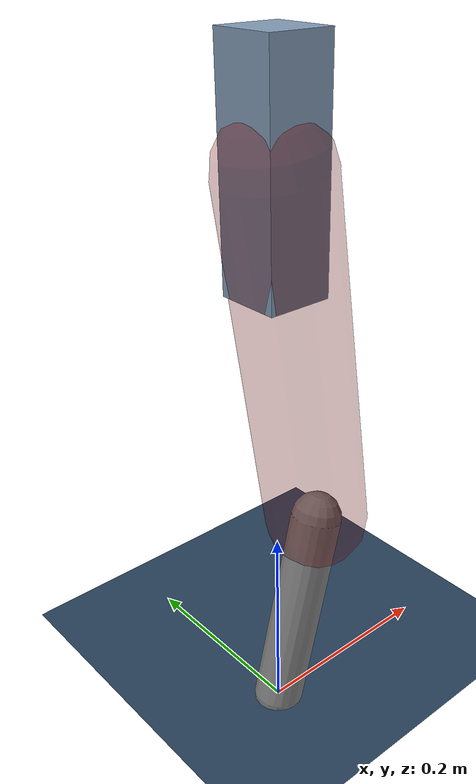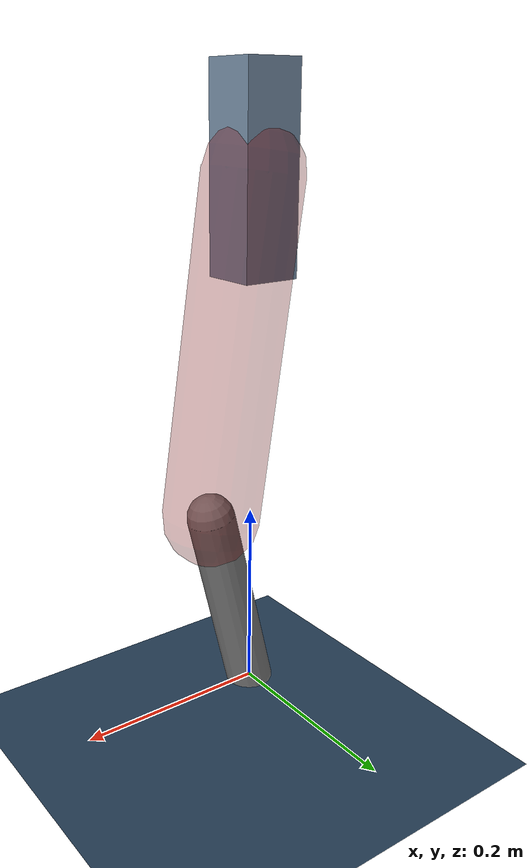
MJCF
<mujoco model="Hopper2D">
	<compiler inertiafromgeom="true" angle="radian" />
	<option timestep="0.001" integrator="implicit" cone="elliptic" solver="Newton" tolerance="1e-10" />

	<default>
		<geom contype="1" conaffinity="1" condim="3" friction="2 0.005 0.0001" solref="0.005 1" />
		<joint limited="true" damping="0.1" />
	</default>

	<asset>
		<texture name="skybox" type="skybox" builtin="gradient" rgb1=".4 .6 .8" rgb2="0 0 0" width="800" height="800" />
		<texture name="grid" type="2d" builtin="checker" rgb1=".1 .2 .3" rgb2=".2 .3 .4" width="300" height="300" mark="edge" markrgb=".2 .3 .4" />
		<material name="ground" texture="grid" texrepeat="1 1" texuniform="true" reflectance="0.1" />
		<material name="leg" rgba="0.5 0.6 0.7 1" />
	</asset>

	<worldbody>

		<geom name="floor" type="plane" size="5 5 0.25" material="ground" />

		<light directional="false" diffuse="0.8 0.8 0.8" specular="0.3 0.3 0.3" pos="0 0 2" dir="0 0 -1" />
		<light mode="targetbodycom" target="base" directional="false" diffuse="0.8 0.8 0.8" specular="0.3 0.3 0.3" pos="0 0 2" dir="0 0 -1" />

		<camera name="fixed" pos="0 -2 1" xyaxes="1 0 0 0 0 1" />
		<camera name="tracking" mode="trackcom" pos="0 -3 1" />

		<body name="root" pos="0 0 0.5456845809063042">
			<joint name="slide_x" type="slide" axis="1 0 0" range="-100 100" />
			<joint name="slide_z" type="slide" axis="0 0 1" range="0 10" />

			<body name="base" pos="0 0 0">
				<geom name="torso" type="box" size="0.03 0.03 0.1" mass="1.8980000000000001" material="leg" />

				<body name="link1" pos="0 0 0" euler="0 1.4224472480897936 0">
					<joint type="hinge" axis="0 -1 0" pos="0 0 0" name="hinge1" limited="true" range="-3.14 3.14" stiffness="0" damping="0.1" />
					<geom name="thigh" type="capsule" fromto="0 0 0 0.3443164759202741 0 0" size="0.05" rgba="0.5 0 0 0.3" mass="1.1106861325767674" />

					<body name="link2" pos="0.3443164759202741 0 0" euler="0 0.3915120223550547 0">
						<joint type="hinge" axis="0 -1 0" pos="0 0 0" name="hinge2" limited="true" range="-3.14 3.14" stiffness="0" damping="0.1" />
						<geom name="shank" type="capsule" fromto="0 0 0 0.21136810498603018 0 0" size="0.025" mass="0.41043129448742716" />

					</body>
				</body>
			</body>
		</body>
	</worldbody>

	<actuator>
		<motor name="torque1" joint="hinge1" ctrlrange="-8.842912272793336 8.842912272793336" ctrllimited="true" gear="1" />
		<motor name="torque2" joint="hinge2" ctrlrange="-159.64146444745785 159.64146444745785" ctrllimited="true" gear="1" />
	</actuator>
</mujoco>
